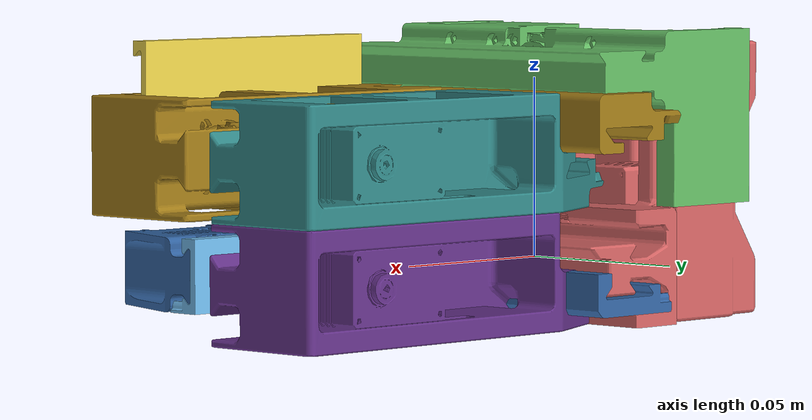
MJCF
<?xml version="1.0" encoding="UTF-8"?>
<mujoco model="cartesian_hand">
  <compiler angle="radian" meshdir="meshes" autolimits="true"/>
  <option timestep="0.0005" iterations="100" integrator="implicitfast"/>
  <visual>
    <headlight diffuse="0.6 0.6 0.6" ambient="0.35 0.35 0.35" specular="0.2 0.2 0.2"/>
    <global azimuth="-30" elevation="-20"/>
  </visual>
  <statistic center="0.05 0 0.03" extent="0.30" meansize="0.01"/>

  <asset>
    <mesh name="base_mesh" file="base.obj" scale="0.001 0.001 0.001"/>
    <mesh name="base_col_00_mesh" file="collision_pieces/base_00.obj" scale="0.001 0.001 0.001"/>
    <mesh name="base_col_01_mesh" file="collision_pieces/base_01.obj" scale="0.001 0.001 0.001"/>
    <mesh name="base_col_02_mesh" file="collision_pieces/base_02.obj" scale="0.001 0.001 0.001"/>
    <mesh name="base_col_03_mesh" file="collision_pieces/base_03.obj" scale="0.001 0.001 0.001"/>
    <mesh name="base_col_04_mesh" file="collision_pieces/base_04.obj" scale="0.001 0.001 0.001"/>
    <mesh name="base_col_05_mesh" file="collision_pieces/base_05.obj" scale="0.001 0.001 0.001"/>
    <mesh name="bridge_mesh" file="bridge.obj" scale="0.001 0.001 0.001"/>
    <mesh name="bridge_col_00_mesh" file="collision_pieces/bridge_00.obj" scale="0.001 0.001 0.001"/>
    <mesh name="bridge_col_01_mesh" file="collision_pieces/bridge_01.obj" scale="0.001 0.001 0.001"/>
    <mesh name="bridge_col_02_mesh" file="collision_pieces/bridge_02.obj" scale="0.001 0.001 0.001"/>
    <mesh name="bridge_col_03_mesh" file="collision_pieces/bridge_03.obj" scale="0.001 0.001 0.001"/>
    <mesh name="bridge_col_04_mesh" file="collision_pieces/bridge_04.obj" scale="0.001 0.001 0.001"/>
    <mesh name="bridge_col_05_mesh" file="collision_pieces/bridge_05.obj" scale="0.001 0.001 0.001"/>
    <mesh name="left_down_finger_mesh" file="left_down_finger.obj" scale="0.001 0.001 0.001"/>
    <mesh name="left_down_finger_col_00_mesh" file="collision_pieces/left_down_finger_00.obj" scale="0.001 0.001 0.001"/>
    <mesh name="left_down_finger_col_01_mesh" file="collision_pieces/left_down_finger_01.obj" scale="0.001 0.001 0.001"/>
    <mesh name="left_down_finger_col_02_mesh" file="collision_pieces/left_down_finger_02.obj" scale="0.001 0.001 0.001"/>
    <mesh name="left_down_finger_col_03_mesh" file="collision_pieces/left_down_finger_03.obj" scale="0.001 0.001 0.001"/>
    <mesh name="left_down_rack_mesh" file="left_down_rack.obj" scale="0.001 0.001 0.001"/>
    <mesh name="left_down_rack_col_00_mesh" file="collision_pieces/left_down_rack_00.obj" scale="0.001 0.001 0.001"/>
    <mesh name="left_down_rack_col_01_mesh" file="collision_pieces/left_down_rack_01.obj" scale="0.001 0.001 0.001"/>
    <mesh name="left_down_rack_col_02_mesh" file="collision_pieces/left_down_rack_02.obj" scale="0.001 0.001 0.001"/>
    <mesh name="left_down_rack_col_03_mesh" file="collision_pieces/left_down_rack_03.obj" scale="0.001 0.001 0.001"/>
    <mesh name="left_down_rack_col_04_mesh" file="collision_pieces/left_down_rack_04.obj" scale="0.001 0.001 0.001"/>
    <mesh name="left_down_rack_col_05_mesh" file="collision_pieces/left_down_rack_05.obj" scale="0.001 0.001 0.001"/>
    <mesh name="left_down_rack_col_06_mesh" file="collision_pieces/left_down_rack_06.obj" scale="0.001 0.001 0.001"/>
    <mesh name="left_down_rack_col_07_mesh" file="collision_pieces/left_down_rack_07.obj" scale="0.001 0.001 0.001"/>
    <mesh name="left_down_rack_col_08_mesh" file="collision_pieces/left_down_rack_08.obj" scale="0.001 0.001 0.001"/>
    <mesh name="left_down_rack_col_09_mesh" file="collision_pieces/left_down_rack_09.obj" scale="0.001 0.001 0.001"/>
    <mesh name="left_down_rack_col_10_mesh" file="collision_pieces/left_down_rack_10.obj" scale="0.001 0.001 0.001"/>
    <mesh name="left_down_rack_col_11_mesh" file="collision_pieces/left_down_rack_11.obj" scale="0.001 0.001 0.001"/>
    <mesh name="left_down_rack_col_12_mesh" file="collision_pieces/left_down_rack_12.obj" scale="0.001 0.001 0.001"/>
    <mesh name="left_down_rack_col_13_mesh" file="collision_pieces/left_down_rack_13.obj" scale="0.001 0.001 0.001"/>
    <mesh name="left_down_rack_col_14_mesh" file="collision_pieces/left_down_rack_14.obj" scale="0.001 0.001 0.001"/>
    <mesh name="left_down_rack_col_15_mesh" file="collision_pieces/left_down_rack_15.obj" scale="0.001 0.001 0.001"/>
    <mesh name="left_down_rack_col_16_mesh" file="collision_pieces/left_down_rack_16.obj" scale="0.001 0.001 0.001"/>
    <mesh name="left_down_rack_col_17_mesh" file="collision_pieces/left_down_rack_17.obj" scale="0.001 0.001 0.001"/>
    <mesh name="left_down_rack_col_18_mesh" file="collision_pieces/left_down_rack_18.obj" scale="0.001 0.001 0.001"/>
    <mesh name="left_down_rack_col_19_mesh" file="collision_pieces/left_down_rack_19.obj" scale="0.001 0.001 0.001"/>
    <mesh name="left_down_rack_col_20_mesh" file="collision_pieces/left_down_rack_20.obj" scale="0.001 0.001 0.001"/>
    <mesh name="left_down_rack_col_21_mesh" file="collision_pieces/left_down_rack_21.obj" scale="0.001 0.001 0.001"/>
    <mesh name="left_down_rack_col_22_mesh" file="collision_pieces/left_down_rack_22.obj" scale="0.001 0.001 0.001"/>
    <mesh name="left_down_rack_col_23_mesh" file="collision_pieces/left_down_rack_23.obj" scale="0.001 0.001 0.001"/>
    <mesh name="left_down_rack_col_24_mesh" file="collision_pieces/left_down_rack_24.obj" scale="0.001 0.001 0.001"/>
    <mesh name="left_down_rack_col_25_mesh" file="collision_pieces/left_down_rack_25.obj" scale="0.001 0.001 0.001"/>
    <mesh name="left_down_rack_col_26_mesh" file="collision_pieces/left_down_rack_26.obj" scale="0.001 0.001 0.001"/>
    <mesh name="left_down_rack_col_27_mesh" file="collision_pieces/left_down_rack_27.obj" scale="0.001 0.001 0.001"/>
    <mesh name="left_down_rack_col_28_mesh" file="collision_pieces/left_down_rack_28.obj" scale="0.001 0.001 0.001"/>
    <mesh name="left_down_rack_col_29_mesh" file="collision_pieces/left_down_rack_29.obj" scale="0.001 0.001 0.001"/>
    <mesh name="left_down_rack_col_30_mesh" file="collision_pieces/left_down_rack_30.obj" scale="0.001 0.001 0.001"/>
    <mesh name="left_down_rack_col_31_mesh" file="collision_pieces/left_down_rack_31.obj" scale="0.001 0.001 0.001"/>
    <mesh name="left_down_rack_col_32_mesh" file="collision_pieces/left_down_rack_32.obj" scale="0.001 0.001 0.001"/>
    <mesh name="left_down_rack_col_33_mesh" file="collision_pieces/left_down_rack_33.obj" scale="0.001 0.001 0.001"/>
    <mesh name="left_up_finger_mesh" file="left_up_finger.obj" scale="0.001 0.001 0.001"/>
    <mesh name="left_up_finger_col_00_mesh" file="collision_pieces/left_up_finger_00.obj" scale="0.001 0.001 0.001"/>
    <mesh name="left_up_finger_col_01_mesh" file="collision_pieces/left_up_finger_01.obj" scale="0.001 0.001 0.001"/>
    <mesh name="left_up_finger_col_02_mesh" file="collision_pieces/left_up_finger_02.obj" scale="0.001 0.001 0.001"/>
    <mesh name="left_up_finger_col_03_mesh" file="collision_pieces/left_up_finger_03.obj" scale="0.001 0.001 0.001"/>
    <mesh name="left_up_rack_mesh" file="left_up_rack.obj" scale="0.001 0.001 0.001"/>
    <mesh name="left_up_rack_col_00_mesh" file="collision_pieces/left_up_rack_00.obj" scale="0.001 0.001 0.001"/>
    <mesh name="left_up_rack_col_01_mesh" file="collision_pieces/left_up_rack_01.obj" scale="0.001 0.001 0.001"/>
    <mesh name="left_up_rack_col_02_mesh" file="collision_pieces/left_up_rack_02.obj" scale="0.001 0.001 0.001"/>
    <mesh name="left_up_rack_col_03_mesh" file="collision_pieces/left_up_rack_03.obj" scale="0.001 0.001 0.001"/>
    <mesh name="left_up_rack_col_04_mesh" file="collision_pieces/left_up_rack_04.obj" scale="0.001 0.001 0.001"/>
    <mesh name="left_up_rack_col_05_mesh" file="collision_pieces/left_up_rack_05.obj" scale="0.001 0.001 0.001"/>
    <mesh name="left_up_rack_col_06_mesh" file="collision_pieces/left_up_rack_06.obj" scale="0.001 0.001 0.001"/>
    <mesh name="left_up_rack_col_07_mesh" file="collision_pieces/left_up_rack_07.obj" scale="0.001 0.001 0.001"/>
    <mesh name="left_up_rack_col_08_mesh" file="collision_pieces/left_up_rack_08.obj" scale="0.001 0.001 0.001"/>
    <mesh name="left_up_rack_col_09_mesh" file="collision_pieces/left_up_rack_09.obj" scale="0.001 0.001 0.001"/>
    <mesh name="left_up_rack_col_10_mesh" file="collision_pieces/left_up_rack_10.obj" scale="0.001 0.001 0.001"/>
    <mesh name="left_up_rack_col_11_mesh" file="collision_pieces/left_up_rack_11.obj" scale="0.001 0.001 0.001"/>
    <mesh name="left_up_rack_col_12_mesh" file="collision_pieces/left_up_rack_12.obj" scale="0.001 0.001 0.001"/>
    <mesh name="left_up_rack_col_13_mesh" file="collision_pieces/left_up_rack_13.obj" scale="0.001 0.001 0.001"/>
    <mesh name="left_up_rack_col_14_mesh" file="collision_pieces/left_up_rack_14.obj" scale="0.001 0.001 0.001"/>
    <mesh name="left_up_rack_col_15_mesh" file="collision_pieces/left_up_rack_15.obj" scale="0.001 0.001 0.001"/>
    <mesh name="left_up_rack_col_16_mesh" file="collision_pieces/left_up_rack_16.obj" scale="0.001 0.001 0.001"/>
    <mesh name="left_up_rack_col_17_mesh" file="collision_pieces/left_up_rack_17.obj" scale="0.001 0.001 0.001"/>
    <mesh name="left_up_rack_col_18_mesh" file="collision_pieces/left_up_rack_18.obj" scale="0.001 0.001 0.001"/>
    <mesh name="left_up_rack_col_19_mesh" file="collision_pieces/left_up_rack_19.obj" scale="0.001 0.001 0.001"/>
    <mesh name="left_up_rack_col_20_mesh" file="collision_pieces/left_up_rack_20.obj" scale="0.001 0.001 0.001"/>
    <mesh name="left_up_rack_col_21_mesh" file="collision_pieces/left_up_rack_21.obj" scale="0.001 0.001 0.001"/>
    <mesh name="left_up_rack_col_22_mesh" file="collision_pieces/left_up_rack_22.obj" scale="0.001 0.001 0.001"/>
    <mesh name="left_up_rack_col_23_mesh" file="collision_pieces/left_up_rack_23.obj" scale="0.001 0.001 0.001"/>
    <mesh name="left_up_rack_col_24_mesh" file="collision_pieces/left_up_rack_24.obj" scale="0.001 0.001 0.001"/>
    <mesh name="left_up_rack_col_25_mesh" file="collision_pieces/left_up_rack_25.obj" scale="0.001 0.001 0.001"/>
    <mesh name="left_up_rack_col_26_mesh" file="collision_pieces/left_up_rack_26.obj" scale="0.001 0.001 0.001"/>
    <mesh name="left_up_rack_col_27_mesh" file="collision_pieces/left_up_rack_27.obj" scale="0.001 0.001 0.001"/>
    <mesh name="left_up_rack_col_28_mesh" file="collision_pieces/left_up_rack_28.obj" scale="0.001 0.001 0.001"/>
    <mesh name="left_up_rack_col_29_mesh" file="collision_pieces/left_up_rack_29.obj" scale="0.001 0.001 0.001"/>
    <mesh name="left_up_rack_col_30_mesh" file="collision_pieces/left_up_rack_30.obj" scale="0.001 0.001 0.001"/>
    <mesh name="right_down_finger_mesh" file="right_down_finger.obj" scale="0.001 0.001 0.001"/>
    <mesh name="right_down_finger_col_00_mesh" file="collision_pieces/right_down_finger_00.obj" scale="0.001 0.001 0.001"/>
    <mesh name="right_down_finger_col_01_mesh" file="collision_pieces/right_down_finger_01.obj" scale="0.001 0.001 0.001"/>
    <mesh name="right_down_finger_col_02_mesh" file="collision_pieces/right_down_finger_02.obj" scale="0.001 0.001 0.001"/>
    <mesh name="right_down_finger_col_03_mesh" file="collision_pieces/right_down_finger_03.obj" scale="0.001 0.001 0.001"/>
    <mesh name="right_down_rack_mesh" file="right_down_rack.obj" scale="0.001 0.001 0.001"/>
    <mesh name="right_down_rack_col_00_mesh" file="collision_pieces/right_down_rack_00.obj" scale="0.001 0.001 0.001"/>
    <mesh name="right_down_rack_col_01_mesh" file="collision_pieces/right_down_rack_01.obj" scale="0.001 0.001 0.001"/>
    <mesh name="right_down_rack_col_02_mesh" file="collision_pieces/right_down_rack_02.obj" scale="0.001 0.001 0.001"/>
    <mesh name="right_down_rack_col_03_mesh" file="collision_pieces/right_down_rack_03.obj" scale="0.001 0.001 0.001"/>
    <mesh name="right_down_rack_col_04_mesh" file="collision_pieces/right_down_rack_04.obj" scale="0.001 0.001 0.001"/>
    <mesh name="right_down_rack_col_05_mesh" file="collision_pieces/right_down_rack_05.obj" scale="0.001 0.001 0.001"/>
    <mesh name="right_down_rack_col_06_mesh" file="collision_pieces/right_down_rack_06.obj" scale="0.001 0.001 0.001"/>
    <mesh name="right_down_rack_col_07_mesh" file="collision_pieces/right_down_rack_07.obj" scale="0.001 0.001 0.001"/>
    <mesh name="right_down_rack_col_08_mesh" file="collision_pieces/right_down_rack_08.obj" scale="0.001 0.001 0.001"/>
    <mesh name="right_down_rack_col_09_mesh" file="collision_pieces/right_down_rack_09.obj" scale="0.001 0.001 0.001"/>
    <mesh name="right_down_rack_col_10_mesh" file="collision_pieces/right_down_rack_10.obj" scale="0.001 0.001 0.001"/>
    <mesh name="right_down_rack_col_11_mesh" file="collision_pieces/right_down_rack_11.obj" scale="0.001 0.001 0.001"/>
    <mesh name="right_down_rack_col_12_mesh" file="collision_pieces/right_down_rack_12.obj" scale="0.001 0.001 0.001"/>
    <mesh name="right_down_rack_col_13_mesh" file="collision_pieces/right_down_rack_13.obj" scale="0.001 0.001 0.001"/>
    <mesh name="right_down_rack_col_14_mesh" file="collision_pieces/right_down_rack_14.obj" scale="0.001 0.001 0.001"/>
    <mesh name="right_down_rack_col_15_mesh" file="collision_pieces/right_down_rack_15.obj" scale="0.001 0.001 0.001"/>
    <mesh name="right_down_rack_col_16_mesh" file="collision_pieces/right_down_rack_16.obj" scale="0.001 0.001 0.001"/>
    <mesh name="right_down_rack_col_17_mesh" file="collision_pieces/right_down_rack_17.obj" scale="0.001 0.001 0.001"/>
    <mesh name="right_down_rack_col_18_mesh" file="collision_pieces/right_down_rack_18.obj" scale="0.001 0.001 0.001"/>
    <mesh name="right_down_rack_col_19_mesh" file="collision_pieces/right_down_rack_19.obj" scale="0.001 0.001 0.001"/>
    <mesh name="right_down_rack_col_20_mesh" file="collision_pieces/right_down_rack_20.obj" scale="0.001 0.001 0.001"/>
    <mesh name="right_down_rack_col_21_mesh" file="collision_pieces/right_down_rack_21.obj" scale="0.001 0.001 0.001"/>
    <mesh name="right_down_rack_col_22_mesh" file="collision_pieces/right_down_rack_22.obj" scale="0.001 0.001 0.001"/>
    <mesh name="right_down_rack_col_23_mesh" file="collision_pieces/right_down_rack_23.obj" scale="0.001 0.001 0.001"/>
    <mesh name="right_down_rack_col_24_mesh" file="collision_pieces/right_down_rack_24.obj" scale="0.001 0.001 0.001"/>
    <mesh name="right_down_rack_col_25_mesh" file="collision_pieces/right_down_rack_25.obj" scale="0.001 0.001 0.001"/>
    <mesh name="right_down_rack_col_26_mesh" file="collision_pieces/right_down_rack_26.obj" scale="0.001 0.001 0.001"/>
    <mesh name="right_down_rack_col_27_mesh" file="collision_pieces/right_down_rack_27.obj" scale="0.001 0.001 0.001"/>
    <mesh name="right_down_rack_col_28_mesh" file="collision_pieces/right_down_rack_28.obj" scale="0.001 0.001 0.001"/>
    <mesh name="right_down_rack_col_29_mesh" file="collision_pieces/right_down_rack_29.obj" scale="0.001 0.001 0.001"/>
    <mesh name="right_down_rack_col_30_mesh" file="collision_pieces/right_down_rack_30.obj" scale="0.001 0.001 0.001"/>
    <mesh name="right_down_rack_col_31_mesh" file="collision_pieces/right_down_rack_31.obj" scale="0.001 0.001 0.001"/>
    <mesh name="right_up_finger_mesh" file="right_up_finger.obj" scale="0.001 0.001 0.001"/>
    <mesh name="right_up_finger_col_00_mesh" file="collision_pieces/right_up_finger_00.obj" scale="0.001 0.001 0.001"/>
    <mesh name="right_up_finger_col_01_mesh" file="collision_pieces/right_up_finger_01.obj" scale="0.001 0.001 0.001"/>
    <mesh name="right_up_finger_col_02_mesh" file="collision_pieces/right_up_finger_02.obj" scale="0.001 0.001 0.001"/>
    <mesh name="right_up_finger_col_03_mesh" file="collision_pieces/right_up_finger_03.obj" scale="0.001 0.001 0.001"/>
    <mesh name="right_up_rack_mesh" file="right_up_rack.obj" scale="0.001 0.001 0.001"/>
    <mesh name="right_up_rack_col_00_mesh" file="collision_pieces/right_up_rack_00.obj" scale="0.001 0.001 0.001"/>
    <mesh name="right_up_rack_col_01_mesh" file="collision_pieces/right_up_rack_01.obj" scale="0.001 0.001 0.001"/>
    <mesh name="right_up_rack_col_02_mesh" file="collision_pieces/right_up_rack_02.obj" scale="0.001 0.001 0.001"/>
    <mesh name="right_up_rack_col_03_mesh" file="collision_pieces/right_up_rack_03.obj" scale="0.001 0.001 0.001"/>
    <mesh name="right_up_rack_col_04_mesh" file="collision_pieces/right_up_rack_04.obj" scale="0.001 0.001 0.001"/>
    <mesh name="right_up_rack_col_05_mesh" file="collision_pieces/right_up_rack_05.obj" scale="0.001 0.001 0.001"/>
    <mesh name="right_up_rack_col_06_mesh" file="collision_pieces/right_up_rack_06.obj" scale="0.001 0.001 0.001"/>
    <mesh name="right_up_rack_col_07_mesh" file="collision_pieces/right_up_rack_07.obj" scale="0.001 0.001 0.001"/>
    <mesh name="right_up_rack_col_08_mesh" file="collision_pieces/right_up_rack_08.obj" scale="0.001 0.001 0.001"/>
    <mesh name="right_up_rack_col_09_mesh" file="collision_pieces/right_up_rack_09.obj" scale="0.001 0.001 0.001"/>
    <mesh name="right_up_rack_col_10_mesh" file="collision_pieces/right_up_rack_10.obj" scale="0.001 0.001 0.001"/>
    <mesh name="right_up_rack_col_11_mesh" file="collision_pieces/right_up_rack_11.obj" scale="0.001 0.001 0.001"/>
    <mesh name="right_up_rack_col_12_mesh" file="collision_pieces/right_up_rack_12.obj" scale="0.001 0.001 0.001"/>
    <mesh name="right_up_rack_col_13_mesh" file="collision_pieces/right_up_rack_13.obj" scale="0.001 0.001 0.001"/>
    <mesh name="right_up_rack_col_14_mesh" file="collision_pieces/right_up_rack_14.obj" scale="0.001 0.001 0.001"/>
    <mesh name="right_up_rack_col_15_mesh" file="collision_pieces/right_up_rack_15.obj" scale="0.001 0.001 0.001"/>
    <mesh name="right_up_rack_col_16_mesh" file="collision_pieces/right_up_rack_16.obj" scale="0.001 0.001 0.001"/>
    <mesh name="right_up_rack_col_17_mesh" file="collision_pieces/right_up_rack_17.obj" scale="0.001 0.001 0.001"/>
    <mesh name="right_up_rack_col_18_mesh" file="collision_pieces/right_up_rack_18.obj" scale="0.001 0.001 0.001"/>
    <mesh name="right_up_rack_col_19_mesh" file="collision_pieces/right_up_rack_19.obj" scale="0.001 0.001 0.001"/>
    <mesh name="right_up_rack_col_20_mesh" file="collision_pieces/right_up_rack_20.obj" scale="0.001 0.001 0.001"/>
    <mesh name="right_up_rack_col_21_mesh" file="collision_pieces/right_up_rack_21.obj" scale="0.001 0.001 0.001"/>
    <mesh name="right_up_rack_col_22_mesh" file="collision_pieces/right_up_rack_22.obj" scale="0.001 0.001 0.001"/>
    <mesh name="right_up_rack_col_23_mesh" file="collision_pieces/right_up_rack_23.obj" scale="0.001 0.001 0.001"/>
    <mesh name="right_up_rack_col_24_mesh" file="collision_pieces/right_up_rack_24.obj" scale="0.001 0.001 0.001"/>
    <mesh name="right_up_rack_col_25_mesh" file="collision_pieces/right_up_rack_25.obj" scale="0.001 0.001 0.001"/>
    <mesh name="right_up_rack_col_26_mesh" file="collision_pieces/right_up_rack_26.obj" scale="0.001 0.001 0.001"/>
    <mesh name="right_up_rack_col_27_mesh" file="collision_pieces/right_up_rack_27.obj" scale="0.001 0.001 0.001"/>
    <mesh name="right_up_rack_col_28_mesh" file="collision_pieces/right_up_rack_28.obj" scale="0.001 0.001 0.001"/>
    <material name="base_mat" rgba="0.85 0.40 0.40 1"/>
    <material name="bridge_mat" rgba="0.40 0.75 0.40 1"/>
    <material name="left_down_rack_mat" rgba="0.20 0.40 0.65 1"/>
    <material name="left_down_finger_mat" rgba="0.45 0.75 0.95 1"/>
    <material name="right_down_rack_mat" rgba="0.40 0.20 0.55 1"/>
    <material name="right_down_finger_mat" rgba="0.80 0.50 0.95 1"/>
    <material name="left_up_rack_mat" rgba="0.65 0.50 0.10 1"/>
    <material name="left_up_finger_mat" rgba="0.95 0.85 0.30 1"/>
    <material name="right_up_rack_mat" rgba="0.20 0.55 0.55 1"/>
    <material name="right_up_finger_mat" rgba="0.50 0.90 0.90 1"/>
    <texture name="grid_tex" type="2d" builtin="checker"
             rgb1="0.20 0.30 0.40" rgb2="0.10 0.15 0.20"
             width="512" height="512"/>
    <material name="grid" texture="grid_tex"
              texrepeat="2 2" texuniform="true" reflectance="0.2"/>
  </asset>

  <worldbody>
    <geom name="floor" type="plane" size="0 0 0.05"
          material="grid" pos="0 0 -0.10"/>
    <light name="overhead" pos="0 0 0.6" dir="0 0 -1"
           directional="true" diffuse="0.85 0.85 0.85"/>
    <light name="fill" pos="0.4 -0.4 0.4" dir="-1 1 -1"
           directional="true" diffuse="0.45 0.45 0.45"/>

    <body name="base" pos="0 0 0">
      <inertial mass="0.0695138"
                pos="-0.0235692 0.00865956 0.0152749"
                diaginertia="4.23609e-05 0.000136314 0.000158393"
                quat="0.922085 0.143966 0.32869 -0.144899"/>
      <geom name="base_visual" type="mesh" mesh="base_mesh"
            material="base_mat" contype="0" conaffinity="0" group="2"/>
      <geom name="base_col_00" type="mesh" mesh="base_col_00_mesh" contype="1" conaffinity="0" group="3" friction="0.5 0.005 0.0001" condim="3" solref="0.005 1"/>
      <geom name="base_col_01" type="mesh" mesh="base_col_01_mesh" contype="1" conaffinity="0" group="3" friction="0.5 0.005 0.0001" condim="3" solref="0.005 1"/>
      <geom name="base_col_02" type="mesh" mesh="base_col_02_mesh" contype="1" conaffinity="0" group="3" friction="0.5 0.005 0.0001" condim="3" solref="0.005 1"/>
      <geom name="base_col_03" type="mesh" mesh="base_col_03_mesh" contype="1" conaffinity="0" group="3" friction="0.5 0.005 0.0001" condim="3" solref="0.005 1"/>
      <geom name="base_col_04" type="mesh" mesh="base_col_04_mesh" contype="1" conaffinity="0" group="3" friction="0.5 0.005 0.0001" condim="3" solref="0.005 1"/>
      <geom name="base_col_05" type="mesh" mesh="base_col_05_mesh" contype="1" conaffinity="0" group="3" friction="0.5 0.005 0.0001" condim="3" solref="0.005 1"/>
      <body name="bridge" pos="0 0 0">
        <inertial mass="0.0811808"
                  pos="-0.0152106 -0.00949439 0.0469537"
                  diaginertia="5.6951e-05 0.000223313 0.000256792"
                  quat="0.589177 -0.0362555 -0.781758 -0.201024"/>
        <joint name="bridge_z" type="slide" axis="0 0 1" range="-0.027 0.03" damping="40" armature="0.05"/>
        <geom name="bridge_visual" type="mesh" mesh="bridge_mesh"
              material="bridge_mat" contype="0" conaffinity="0" group="2"/>
      <geom name="bridge_col_00" type="mesh" mesh="bridge_col_00_mesh" contype="1" conaffinity="0" group="3" friction="0.5 0.005 0.0001" condim="3" solref="0.005 1"/>
      <geom name="bridge_col_01" type="mesh" mesh="bridge_col_01_mesh" contype="1" conaffinity="0" group="3" friction="0.5 0.005 0.0001" condim="3" solref="0.005 1"/>
      <geom name="bridge_col_02" type="mesh" mesh="bridge_col_02_mesh" contype="1" conaffinity="0" group="3" friction="0.5 0.005 0.0001" condim="3" solref="0.005 1"/>
      <geom name="bridge_col_03" type="mesh" mesh="bridge_col_03_mesh" contype="1" conaffinity="0" group="3" friction="0.5 0.005 0.0001" condim="3" solref="0.005 1"/>
      <geom name="bridge_col_04" type="mesh" mesh="bridge_col_04_mesh" contype="1" conaffinity="0" group="3" friction="0.5 0.005 0.0001" condim="3" solref="0.005 1"/>
      <geom name="bridge_col_05" type="mesh" mesh="bridge_col_05_mesh" contype="1" conaffinity="0" group="3" friction="0.5 0.005 0.0001" condim="3" solref="0.005 1"/>
        <body name="left_up_rack" pos="0 0 0">
          <inertial mass="0.036995"
                    pos="0.087428 -0.0550683 0.0520866"
                    diaginertia="6.96676e-06 0.000501376 0.000503989"
                    quat="0.93538 -0.0570725 -0.223156 -0.268344"/>
          <joint name="left_up_y" type="slide" axis="0 1 0" range="-0.02 0.035" damping="12" armature="0.02"/>
          <geom name="left_up_rack_visual" type="mesh" mesh="left_up_rack_mesh"
                material="left_up_rack_mat" contype="0" conaffinity="0" group="2"/>
          <geom name="left_up_rack_col_00" type="mesh" mesh="left_up_rack_col_00_mesh" contype="1" conaffinity="0" group="3" friction="0.5 0.005 0.0001" condim="3" solref="0.005 1"/>
          <geom name="left_up_rack_col_01" type="mesh" mesh="left_up_rack_col_01_mesh" contype="1" conaffinity="0" group="3" friction="0.5 0.005 0.0001" condim="3" solref="0.005 1"/>
          <geom name="left_up_rack_col_02" type="mesh" mesh="left_up_rack_col_02_mesh" contype="1" conaffinity="0" group="3" friction="0.5 0.005 0.0001" condim="3" solref="0.005 1"/>
          <geom name="left_up_rack_col_03" type="mesh" mesh="left_up_rack_col_03_mesh" contype="1" conaffinity="0" group="3" friction="0.5 0.005 0.0001" condim="3" solref="0.005 1"/>
          <geom name="left_up_rack_col_04" type="mesh" mesh="left_up_rack_col_04_mesh" contype="1" conaffinity="0" group="3" friction="0.5 0.005 0.0001" condim="3" solref="0.005 1"/>
          <geom name="left_up_rack_col_05" type="mesh" mesh="left_up_rack_col_05_mesh" contype="1" conaffinity="0" group="3" friction="0.5 0.005 0.0001" condim="3" solref="0.005 1"/>
          <geom name="left_up_rack_col_06" type="mesh" mesh="left_up_rack_col_06_mesh" contype="1" conaffinity="0" group="3" friction="0.5 0.005 0.0001" condim="3" solref="0.005 1"/>
          <geom name="left_up_rack_col_07" type="mesh" mesh="left_up_rack_col_07_mesh" contype="1" conaffinity="0" group="3" friction="0.5 0.005 0.0001" condim="3" solref="0.005 1"/>
          <geom name="left_up_rack_col_08" type="mesh" mesh="left_up_rack_col_08_mesh" contype="1" conaffinity="0" group="3" friction="0.5 0.005 0.0001" condim="3" solref="0.005 1"/>
          <geom name="left_up_rack_col_09" type="mesh" mesh="left_up_rack_col_09_mesh" contype="1" conaffinity="0" group="3" friction="0.5 0.005 0.0001" condim="3" solref="0.005 1"/>
          <geom name="left_up_rack_col_10" type="mesh" mesh="left_up_rack_col_10_mesh" contype="1" conaffinity="0" group="3" friction="0.5 0.005 0.0001" condim="3" solref="0.005 1"/>
          <geom name="left_up_rack_col_11" type="mesh" mesh="left_up_rack_col_11_mesh" contype="1" conaffinity="0" group="3" friction="0.5 0.005 0.0001" condim="3" solref="0.005 1"/>
          <geom name="left_up_rack_col_12" type="mesh" mesh="left_up_rack_col_12_mesh" contype="1" conaffinity="0" group="3" friction="0.5 0.005 0.0001" condim="3" solref="0.005 1"/>
          <geom name="left_up_rack_col_13" type="mesh" mesh="left_up_rack_col_13_mesh" contype="1" conaffinity="0" group="3" friction="0.5 0.005 0.0001" condim="3" solref="0.005 1"/>
          <geom name="left_up_rack_col_14" type="mesh" mesh="left_up_rack_col_14_mesh" contype="1" conaffinity="0" group="3" friction="0.5 0.005 0.0001" condim="3" solref="0.005 1"/>
          <geom name="left_up_rack_col_15" type="mesh" mesh="left_up_rack_col_15_mesh" contype="1" conaffinity="0" group="3" friction="0.5 0.005 0.0001" condim="3" solref="0.005 1"/>
          <geom name="left_up_rack_col_16" type="mesh" mesh="left_up_rack_col_16_mesh" contype="1" conaffinity="0" group="3" friction="0.5 0.005 0.0001" condim="3" solref="0.005 1"/>
          <geom name="left_up_rack_col_17" type="mesh" mesh="left_up_rack_col_17_mesh" contype="1" conaffinity="0" group="3" friction="0.5 0.005 0.0001" condim="3" solref="0.005 1"/>
          <geom name="left_up_rack_col_18" type="mesh" mesh="left_up_rack_col_18_mesh" contype="1" conaffinity="0" group="3" friction="0.5 0.005 0.0001" condim="3" solref="0.005 1"/>
          <geom name="left_up_rack_col_19" type="mesh" mesh="left_up_rack_col_19_mesh" contype="1" conaffinity="0" group="3" friction="0.5 0.005 0.0001" condim="3" solref="0.005 1"/>
          <geom name="left_up_rack_col_20" type="mesh" mesh="left_up_rack_col_20_mesh" contype="1" conaffinity="0" group="3" friction="0.5 0.005 0.0001" condim="3" solref="0.005 1"/>
          <geom name="left_up_rack_col_21" type="mesh" mesh="left_up_rack_col_21_mesh" contype="1" conaffinity="0" group="3" friction="0.5 0.005 0.0001" condim="3" solref="0.005 1"/>
          <geom name="left_up_rack_col_22" type="mesh" mesh="left_up_rack_col_22_mesh" contype="1" conaffinity="0" group="3" friction="0.5 0.005 0.0001" condim="3" solref="0.005 1"/>
          <geom name="left_up_rack_col_23" type="mesh" mesh="left_up_rack_col_23_mesh" contype="1" conaffinity="0" group="3" friction="0.5 0.005 0.0001" condim="3" solref="0.005 1"/>
          <geom name="left_up_rack_col_24" type="mesh" mesh="left_up_rack_col_24_mesh" contype="1" conaffinity="0" group="3" friction="0.5 0.005 0.0001" condim="3" solref="0.005 1"/>
          <geom name="left_up_rack_col_25" type="mesh" mesh="left_up_rack_col_25_mesh" contype="1" conaffinity="0" group="3" friction="0.5 0.005 0.0001" condim="3" solref="0.005 1"/>
          <geom name="left_up_rack_col_26" type="mesh" mesh="left_up_rack_col_26_mesh" contype="1" conaffinity="0" group="3" friction="0.5 0.005 0.0001" condim="3" solref="0.005 1"/>
          <geom name="left_up_rack_col_27" type="mesh" mesh="left_up_rack_col_27_mesh" contype="1" conaffinity="0" group="3" friction="0.5 0.005 0.0001" condim="3" solref="0.005 1"/>
          <geom name="left_up_rack_col_28" type="mesh" mesh="left_up_rack_col_28_mesh" contype="1" conaffinity="0" group="3" friction="0.5 0.005 0.0001" condim="3" solref="0.005 1"/>
          <geom name="left_up_rack_col_29" type="mesh" mesh="left_up_rack_col_29_mesh" contype="1" conaffinity="0" group="3" friction="0.5 0.005 0.0001" condim="3" solref="0.005 1"/>
          <geom name="left_up_rack_col_30" type="mesh" mesh="left_up_rack_col_30_mesh" contype="1" conaffinity="0" group="3" friction="0.5 0.005 0.0001" condim="3" solref="0.005 1"/>
          <body name="left_up_finger" pos="0 0 0">
            <inertial mass="0.00323154"
                      pos="0.0725586 -0.0390056 0.0509872"
                      diaginertia="9.0173e-07 3.14832e-05 3.22223e-05"
                      quat="0.826112 -0.448378 -0.140057 -0.311256"/>
            <joint name="left_up_finger_x" type="slide" axis="1 0 0" range="0 0.055" damping="2.5" armature="0.01"/>
            <geom name="left_up_finger_visual" type="mesh" mesh="left_up_finger_mesh"
                  material="left_up_finger_mat" contype="0" conaffinity="0" group="2"/>
            <geom name="left_up_finger_col_00" type="mesh" mesh="left_up_finger_col_00_mesh" contype="1" conaffinity="0" group="3" friction="0.5 0.005 0.0001" condim="3" solref="0.005 1"/>
            <geom name="left_up_finger_col_01" type="mesh" mesh="left_up_finger_col_01_mesh" contype="1" conaffinity="0" group="3" friction="0.5 0.005 0.0001" condim="3" solref="0.005 1"/>
            <geom name="left_up_finger_col_02" type="mesh" mesh="left_up_finger_col_02_mesh" contype="1" conaffinity="0" group="3" friction="0.5 0.005 0.0001" condim="3" solref="0.005 1"/>
            <geom name="left_up_finger_col_03" type="mesh" mesh="left_up_finger_col_03_mesh" contype="1" conaffinity="0" group="3" friction="0.5 0.005 0.0001" condim="3" solref="0.005 1"/>
          </body>
        </body>
        <body name="right_up_rack" pos="0 0 0">
          <inertial mass="0.036995"
                    pos="0.087428 0.0550683 0.052101"
                    diaginertia="6.96911e-06 0.000501432 0.000504041"
                    quat="0.935102 0.061235 -0.222013 0.26934"/>
          <joint name="right_up_y" type="slide" axis="0 -1 0" range="-0.02 0.035" damping="12" armature="0.02"/>
          <geom name="right_up_rack_visual" type="mesh" mesh="right_up_rack_mesh"
                material="right_up_rack_mat" contype="0" conaffinity="0" group="2"/>
          <geom name="right_up_rack_col_00" type="mesh" mesh="right_up_rack_col_00_mesh" contype="1" conaffinity="0" group="3" friction="0.5 0.005 0.0001" condim="3" solref="0.005 1"/>
          <geom name="right_up_rack_col_01" type="mesh" mesh="right_up_rack_col_01_mesh" contype="1" conaffinity="0" group="3" friction="0.5 0.005 0.0001" condim="3" solref="0.005 1"/>
          <geom name="right_up_rack_col_02" type="mesh" mesh="right_up_rack_col_02_mesh" contype="1" conaffinity="0" group="3" friction="0.5 0.005 0.0001" condim="3" solref="0.005 1"/>
          <geom name="right_up_rack_col_03" type="mesh" mesh="right_up_rack_col_03_mesh" contype="1" conaffinity="0" group="3" friction="0.5 0.005 0.0001" condim="3" solref="0.005 1"/>
          <geom name="right_up_rack_col_04" type="mesh" mesh="right_up_rack_col_04_mesh" contype="1" conaffinity="0" group="3" friction="0.5 0.005 0.0001" condim="3" solref="0.005 1"/>
          <geom name="right_up_rack_col_05" type="mesh" mesh="right_up_rack_col_05_mesh" contype="1" conaffinity="0" group="3" friction="0.5 0.005 0.0001" condim="3" solref="0.005 1"/>
          <geom name="right_up_rack_col_06" type="mesh" mesh="right_up_rack_col_06_mesh" contype="1" conaffinity="0" group="3" friction="0.5 0.005 0.0001" condim="3" solref="0.005 1"/>
          <geom name="right_up_rack_col_07" type="mesh" mesh="right_up_rack_col_07_mesh" contype="1" conaffinity="0" group="3" friction="0.5 0.005 0.0001" condim="3" solref="0.005 1"/>
          <geom name="right_up_rack_col_08" type="mesh" mesh="right_up_rack_col_08_mesh" contype="1" conaffinity="0" group="3" friction="0.5 0.005 0.0001" condim="3" solref="0.005 1"/>
          <geom name="right_up_rack_col_09" type="mesh" mesh="right_up_rack_col_09_mesh" contype="1" conaffinity="0" group="3" friction="0.5 0.005 0.0001" condim="3" solref="0.005 1"/>
          <geom name="right_up_rack_col_10" type="mesh" mesh="right_up_rack_col_10_mesh" contype="1" conaffinity="0" group="3" friction="0.5 0.005 0.0001" condim="3" solref="0.005 1"/>
          <geom name="right_up_rack_col_11" type="mesh" mesh="right_up_rack_col_11_mesh" contype="1" conaffinity="0" group="3" friction="0.5 0.005 0.0001" condim="3" solref="0.005 1"/>
          <geom name="right_up_rack_col_12" type="mesh" mesh="right_up_rack_col_12_mesh" contype="1" conaffinity="0" group="3" friction="0.5 0.005 0.0001" condim="3" solref="0.005 1"/>
          <geom name="right_up_rack_col_13" type="mesh" mesh="right_up_rack_col_13_mesh" contype="1" conaffinity="0" group="3" friction="0.5 0.005 0.0001" condim="3" solref="0.005 1"/>
          <geom name="right_up_rack_col_14" type="mesh" mesh="right_up_rack_col_14_mesh" contype="1" conaffinity="0" group="3" friction="0.5 0.005 0.0001" condim="3" solref="0.005 1"/>
          <geom name="right_up_rack_col_15" type="mesh" mesh="right_up_rack_col_15_mesh" contype="1" conaffinity="0" group="3" friction="0.5 0.005 0.0001" condim="3" solref="0.005 1"/>
          <geom name="right_up_rack_col_16" type="mesh" mesh="right_up_rack_col_16_mesh" contype="1" conaffinity="0" group="3" friction="0.5 0.005 0.0001" condim="3" solref="0.005 1"/>
          <geom name="right_up_rack_col_17" type="mesh" mesh="right_up_rack_col_17_mesh" contype="1" conaffinity="0" group="3" friction="0.5 0.005 0.0001" condim="3" solref="0.005 1"/>
          <geom name="right_up_rack_col_18" type="mesh" mesh="right_up_rack_col_18_mesh" contype="1" conaffinity="0" group="3" friction="0.5 0.005 0.0001" condim="3" solref="0.005 1"/>
          <geom name="right_up_rack_col_19" type="mesh" mesh="right_up_rack_col_19_mesh" contype="1" conaffinity="0" group="3" friction="0.5 0.005 0.0001" condim="3" solref="0.005 1"/>
          <geom name="right_up_rack_col_20" type="mesh" mesh="right_up_rack_col_20_mesh" contype="1" conaffinity="0" group="3" friction="0.5 0.005 0.0001" condim="3" solref="0.005 1"/>
          <geom name="right_up_rack_col_21" type="mesh" mesh="right_up_rack_col_21_mesh" contype="1" conaffinity="0" group="3" friction="0.5 0.005 0.0001" condim="3" solref="0.005 1"/>
          <geom name="right_up_rack_col_22" type="mesh" mesh="right_up_rack_col_22_mesh" contype="1" conaffinity="0" group="3" friction="0.5 0.005 0.0001" condim="3" solref="0.005 1"/>
          <geom name="right_up_rack_col_23" type="mesh" mesh="right_up_rack_col_23_mesh" contype="1" conaffinity="0" group="3" friction="0.5 0.005 0.0001" condim="3" solref="0.005 1"/>
          <geom name="right_up_rack_col_24" type="mesh" mesh="right_up_rack_col_24_mesh" contype="1" conaffinity="0" group="3" friction="0.5 0.005 0.0001" condim="3" solref="0.005 1"/>
          <geom name="right_up_rack_col_25" type="mesh" mesh="right_up_rack_col_25_mesh" contype="1" conaffinity="0" group="3" friction="0.5 0.005 0.0001" condim="3" solref="0.005 1"/>
          <geom name="right_up_rack_col_26" type="mesh" mesh="right_up_rack_col_26_mesh" contype="1" conaffinity="0" group="3" friction="0.5 0.005 0.0001" condim="3" solref="0.005 1"/>
          <geom name="right_up_rack_col_27" type="mesh" mesh="right_up_rack_col_27_mesh" contype="1" conaffinity="0" group="3" friction="0.5 0.005 0.0001" condim="3" solref="0.005 1"/>
          <geom name="right_up_rack_col_28" type="mesh" mesh="right_up_rack_col_28_mesh" contype="1" conaffinity="0" group="3" friction="0.5 0.005 0.0001" condim="3" solref="0.005 1"/>
          <body name="right_up_finger" pos="0 0 0">
            <inertial mass="0.00323154"
                      pos="0.0725586 0.0390056 0.0532003"
                      diaginertia="9.10155e-07 3.21863e-05 3.30009e-05"
                      quat="0.823289 0.448293 -0.14877 0.314794"/>
            <joint name="right_up_finger_x" type="slide" axis="1 0 0" range="0 0.055" damping="2.5" armature="0.01"/>
            <geom name="right_up_finger_visual" type="mesh" mesh="right_up_finger_mesh"
                  material="right_up_finger_mat" contype="0" conaffinity="0" group="2"/>
            <geom name="right_up_finger_col_00" type="mesh" mesh="right_up_finger_col_00_mesh" contype="1" conaffinity="0" group="3" friction="0.5 0.005 0.0001" condim="3" solref="0.005 1"/>
            <geom name="right_up_finger_col_01" type="mesh" mesh="right_up_finger_col_01_mesh" contype="1" conaffinity="0" group="3" friction="0.5 0.005 0.0001" condim="3" solref="0.005 1"/>
            <geom name="right_up_finger_col_02" type="mesh" mesh="right_up_finger_col_02_mesh" contype="1" conaffinity="0" group="3" friction="0.5 0.005 0.0001" condim="3" solref="0.005 1"/>
            <geom name="right_up_finger_col_03" type="mesh" mesh="right_up_finger_col_03_mesh" contype="1" conaffinity="0" group="3" friction="0.5 0.005 0.0001" condim="3" solref="0.005 1"/>
          </body>
        </body>
      </body>
      <body name="left_down_rack" pos="0 0 0">
        <inertial mass="0.036995"
                  pos="0.087428 -0.0361588 -7.1681e-06"
                  diaginertia="6.40708e-06 0.000337181 0.000340371"
                  quat="0.980837 0.00193905 -0.000352174 -0.194821"/>
        <joint name="left_down_y" type="slide" axis="0 1 0" range="-0.04 0.017" damping="12" armature="0.02"/>
        <geom name="left_down_rack_visual" type="mesh" mesh="left_down_rack_mesh"
              material="left_down_rack_mat" contype="0" conaffinity="0" group="2"/>
        <geom name="left_down_rack_col_00" type="mesh" mesh="left_down_rack_col_00_mesh" contype="1" conaffinity="0" group="3" friction="0.5 0.005 0.0001" condim="3" solref="0.005 1"/>
        <geom name="left_down_rack_col_01" type="mesh" mesh="left_down_rack_col_01_mesh" contype="1" conaffinity="0" group="3" friction="0.5 0.005 0.0001" condim="3" solref="0.005 1"/>
        <geom name="left_down_rack_col_02" type="mesh" mesh="left_down_rack_col_02_mesh" contype="1" conaffinity="0" group="3" friction="0.5 0.005 0.0001" condim="3" solref="0.005 1"/>
        <geom name="left_down_rack_col_03" type="mesh" mesh="left_down_rack_col_03_mesh" contype="1" conaffinity="0" group="3" friction="0.5 0.005 0.0001" condim="3" solref="0.005 1"/>
        <geom name="left_down_rack_col_04" type="mesh" mesh="left_down_rack_col_04_mesh" contype="1" conaffinity="0" group="3" friction="0.5 0.005 0.0001" condim="3" solref="0.005 1"/>
        <geom name="left_down_rack_col_05" type="mesh" mesh="left_down_rack_col_05_mesh" contype="1" conaffinity="0" group="3" friction="0.5 0.005 0.0001" condim="3" solref="0.005 1"/>
        <geom name="left_down_rack_col_06" type="mesh" mesh="left_down_rack_col_06_mesh" contype="1" conaffinity="0" group="3" friction="0.5 0.005 0.0001" condim="3" solref="0.005 1"/>
        <geom name="left_down_rack_col_07" type="mesh" mesh="left_down_rack_col_07_mesh" contype="1" conaffinity="0" group="3" friction="0.5 0.005 0.0001" condim="3" solref="0.005 1"/>
        <geom name="left_down_rack_col_08" type="mesh" mesh="left_down_rack_col_08_mesh" contype="1" conaffinity="0" group="3" friction="0.5 0.005 0.0001" condim="3" solref="0.005 1"/>
        <geom name="left_down_rack_col_09" type="mesh" mesh="left_down_rack_col_09_mesh" contype="1" conaffinity="0" group="3" friction="0.5 0.005 0.0001" condim="3" solref="0.005 1"/>
        <geom name="left_down_rack_col_10" type="mesh" mesh="left_down_rack_col_10_mesh" contype="1" conaffinity="0" group="3" friction="0.5 0.005 0.0001" condim="3" solref="0.005 1"/>
        <geom name="left_down_rack_col_11" type="mesh" mesh="left_down_rack_col_11_mesh" contype="1" conaffinity="0" group="3" friction="0.5 0.005 0.0001" condim="3" solref="0.005 1"/>
        <geom name="left_down_rack_col_12" type="mesh" mesh="left_down_rack_col_12_mesh" contype="1" conaffinity="0" group="3" friction="0.5 0.005 0.0001" condim="3" solref="0.005 1"/>
        <geom name="left_down_rack_col_13" type="mesh" mesh="left_down_rack_col_13_mesh" contype="1" conaffinity="0" group="3" friction="0.5 0.005 0.0001" condim="3" solref="0.005 1"/>
        <geom name="left_down_rack_col_14" type="mesh" mesh="left_down_rack_col_14_mesh" contype="1" conaffinity="0" group="3" friction="0.5 0.005 0.0001" condim="3" solref="0.005 1"/>
        <geom name="left_down_rack_col_15" type="mesh" mesh="left_down_rack_col_15_mesh" contype="1" conaffinity="0" group="3" friction="0.5 0.005 0.0001" condim="3" solref="0.005 1"/>
        <geom name="left_down_rack_col_16" type="mesh" mesh="left_down_rack_col_16_mesh" contype="1" conaffinity="0" group="3" friction="0.5 0.005 0.0001" condim="3" solref="0.005 1"/>
        <geom name="left_down_rack_col_17" type="mesh" mesh="left_down_rack_col_17_mesh" contype="1" conaffinity="0" group="3" friction="0.5 0.005 0.0001" condim="3" solref="0.005 1"/>
        <geom name="left_down_rack_col_18" type="mesh" mesh="left_down_rack_col_18_mesh" contype="1" conaffinity="0" group="3" friction="0.5 0.005 0.0001" condim="3" solref="0.005 1"/>
        <geom name="left_down_rack_col_19" type="mesh" mesh="left_down_rack_col_19_mesh" contype="1" conaffinity="0" group="3" friction="0.5 0.005 0.0001" condim="3" solref="0.005 1"/>
        <geom name="left_down_rack_col_20" type="mesh" mesh="left_down_rack_col_20_mesh" contype="1" conaffinity="0" group="3" friction="0.5 0.005 0.0001" condim="3" solref="0.005 1"/>
        <geom name="left_down_rack_col_21" type="mesh" mesh="left_down_rack_col_21_mesh" contype="1" conaffinity="0" group="3" friction="0.5 0.005 0.0001" condim="3" solref="0.005 1"/>
        <geom name="left_down_rack_col_22" type="mesh" mesh="left_down_rack_col_22_mesh" contype="1" conaffinity="0" group="3" friction="0.5 0.005 0.0001" condim="3" solref="0.005 1"/>
        <geom name="left_down_rack_col_23" type="mesh" mesh="left_down_rack_col_23_mesh" contype="1" conaffinity="0" group="3" friction="0.5 0.005 0.0001" condim="3" solref="0.005 1"/>
        <geom name="left_down_rack_col_24" type="mesh" mesh="left_down_rack_col_24_mesh" contype="1" conaffinity="0" group="3" friction="0.5 0.005 0.0001" condim="3" solref="0.005 1"/>
        <geom name="left_down_rack_col_25" type="mesh" mesh="left_down_rack_col_25_mesh" contype="1" conaffinity="0" group="3" friction="0.5 0.005 0.0001" condim="3" solref="0.005 1"/>
        <geom name="left_down_rack_col_26" type="mesh" mesh="left_down_rack_col_26_mesh" contype="1" conaffinity="0" group="3" friction="0.5 0.005 0.0001" condim="3" solref="0.005 1"/>
        <geom name="left_down_rack_col_27" type="mesh" mesh="left_down_rack_col_27_mesh" contype="1" conaffinity="0" group="3" friction="0.5 0.005 0.0001" condim="3" solref="0.005 1"/>
        <geom name="left_down_rack_col_28" type="mesh" mesh="left_down_rack_col_28_mesh" contype="1" conaffinity="0" group="3" friction="0.5 0.005 0.0001" condim="3" solref="0.005 1"/>
        <geom name="left_down_rack_col_29" type="mesh" mesh="left_down_rack_col_29_mesh" contype="1" conaffinity="0" group="3" friction="0.5 0.005 0.0001" condim="3" solref="0.005 1"/>
        <geom name="left_down_rack_col_30" type="mesh" mesh="left_down_rack_col_30_mesh" contype="1" conaffinity="0" group="3" friction="0.5 0.005 0.0001" condim="3" solref="0.005 1"/>
        <geom name="left_down_rack_col_31" type="mesh" mesh="left_down_rack_col_31_mesh" contype="1" conaffinity="0" group="3" friction="0.5 0.005 0.0001" condim="3" solref="0.005 1"/>
        <geom name="left_down_rack_col_32" type="mesh" mesh="left_down_rack_col_32_mesh" contype="1" conaffinity="0" group="3" friction="0.5 0.005 0.0001" condim="3" solref="0.005 1"/>
        <geom name="left_down_rack_col_33" type="mesh" mesh="left_down_rack_col_33_mesh" contype="1" conaffinity="0" group="3" friction="0.5 0.005 0.0001" condim="3" solref="0.005 1"/>
        <body name="left_down_finger" pos="0 0 0">
          <inertial mass="0.00323154"
                    pos="0.0725586 -0.0200962 -0.00110656"
                    diaginertia="2.92597e-07 2.01226e-05 2.01748e-05"
                    quat="-0.498583 0.858007 -0.110055 0.0559259"/>
          <joint name="left_down_finger_x" type="slide" axis="1 0 0" range="0 0.055" damping="2.5" armature="0.01"/>
          <geom name="left_down_finger_visual" type="mesh" mesh="left_down_finger_mesh"
                material="left_down_finger_mat" contype="0" conaffinity="0" group="2"/>
          <geom name="left_down_finger_col_00" type="mesh" mesh="left_down_finger_col_00_mesh" contype="1" conaffinity="0" group="3" friction="0.5 0.005 0.0001" condim="3" solref="0.005 1"/>
          <geom name="left_down_finger_col_01" type="mesh" mesh="left_down_finger_col_01_mesh" contype="1" conaffinity="0" group="3" friction="0.5 0.005 0.0001" condim="3" solref="0.005 1"/>
          <geom name="left_down_finger_col_02" type="mesh" mesh="left_down_finger_col_02_mesh" contype="1" conaffinity="0" group="3" friction="0.5 0.005 0.0001" condim="3" solref="0.005 1"/>
          <geom name="left_down_finger_col_03" type="mesh" mesh="left_down_finger_col_03_mesh" contype="1" conaffinity="0" group="3" friction="0.5 0.005 0.0001" condim="3" solref="0.005 1"/>
        </body>
      </body>
      <body name="right_down_rack" pos="0 0 0">
        <inertial mass="0.036995"
                  pos="0.087428 0.0361588 7.1681e-06"
                  diaginertia="6.40708e-06 0.000337181 0.000340371"
                  quat="0.980837 0.00193905 0.000352174 0.194821"/>
        <joint name="right_down_y" type="slide" axis="0 -1 0" range="-0.04 0.017" damping="12" armature="0.02"/>
        <geom name="right_down_rack_visual" type="mesh" mesh="right_down_rack_mesh"
              material="right_down_rack_mat" contype="0" conaffinity="0" group="2"/>
        <geom name="right_down_rack_col_00" type="mesh" mesh="right_down_rack_col_00_mesh" contype="1" conaffinity="0" group="3" friction="0.5 0.005 0.0001" condim="3" solref="0.005 1"/>
        <geom name="right_down_rack_col_01" type="mesh" mesh="right_down_rack_col_01_mesh" contype="1" conaffinity="0" group="3" friction="0.5 0.005 0.0001" condim="3" solref="0.005 1"/>
        <geom name="right_down_rack_col_02" type="mesh" mesh="right_down_rack_col_02_mesh" contype="1" conaffinity="0" group="3" friction="0.5 0.005 0.0001" condim="3" solref="0.005 1"/>
        <geom name="right_down_rack_col_03" type="mesh" mesh="right_down_rack_col_03_mesh" contype="1" conaffinity="0" group="3" friction="0.5 0.005 0.0001" condim="3" solref="0.005 1"/>
        <geom name="right_down_rack_col_04" type="mesh" mesh="right_down_rack_col_04_mesh" contype="1" conaffinity="0" group="3" friction="0.5 0.005 0.0001" condim="3" solref="0.005 1"/>
        <geom name="right_down_rack_col_05" type="mesh" mesh="right_down_rack_col_05_mesh" contype="1" conaffinity="0" group="3" friction="0.5 0.005 0.0001" condim="3" solref="0.005 1"/>
        <geom name="right_down_rack_col_06" type="mesh" mesh="right_down_rack_col_06_mesh" contype="1" conaffinity="0" group="3" friction="0.5 0.005 0.0001" condim="3" solref="0.005 1"/>
        <geom name="right_down_rack_col_07" type="mesh" mesh="right_down_rack_col_07_mesh" contype="1" conaffinity="0" group="3" friction="0.5 0.005 0.0001" condim="3" solref="0.005 1"/>
        <geom name="right_down_rack_col_08" type="mesh" mesh="right_down_rack_col_08_mesh" contype="1" conaffinity="0" group="3" friction="0.5 0.005 0.0001" condim="3" solref="0.005 1"/>
        <geom name="right_down_rack_col_09" type="mesh" mesh="right_down_rack_col_09_mesh" contype="1" conaffinity="0" group="3" friction="0.5 0.005 0.0001" condim="3" solref="0.005 1"/>
        <geom name="right_down_rack_col_10" type="mesh" mesh="right_down_rack_col_10_mesh" contype="1" conaffinity="0" group="3" friction="0.5 0.005 0.0001" condim="3" solref="0.005 1"/>
        <geom name="right_down_rack_col_11" type="mesh" mesh="right_down_rack_col_11_mesh" contype="1" conaffinity="0" group="3" friction="0.5 0.005 0.0001" condim="3" solref="0.005 1"/>
        <geom name="right_down_rack_col_12" type="mesh" mesh="right_down_rack_col_12_mesh" contype="1" conaffinity="0" group="3" friction="0.5 0.005 0.0001" condim="3" solref="0.005 1"/>
        <geom name="right_down_rack_col_13" type="mesh" mesh="right_down_rack_col_13_mesh" contype="1" conaffinity="0" group="3" friction="0.5 0.005 0.0001" condim="3" solref="0.005 1"/>
        <geom name="right_down_rack_col_14" type="mesh" mesh="right_down_rack_col_14_mesh" contype="1" conaffinity="0" group="3" friction="0.5 0.005 0.0001" condim="3" solref="0.005 1"/>
        <geom name="right_down_rack_col_15" type="mesh" mesh="right_down_rack_col_15_mesh" contype="1" conaffinity="0" group="3" friction="0.5 0.005 0.0001" condim="3" solref="0.005 1"/>
        <geom name="right_down_rack_col_16" type="mesh" mesh="right_down_rack_col_16_mesh" contype="1" conaffinity="0" group="3" friction="0.5 0.005 0.0001" condim="3" solref="0.005 1"/>
        <geom name="right_down_rack_col_17" type="mesh" mesh="right_down_rack_col_17_mesh" contype="1" conaffinity="0" group="3" friction="0.5 0.005 0.0001" condim="3" solref="0.005 1"/>
        <geom name="right_down_rack_col_18" type="mesh" mesh="right_down_rack_col_18_mesh" contype="1" conaffinity="0" group="3" friction="0.5 0.005 0.0001" condim="3" solref="0.005 1"/>
        <geom name="right_down_rack_col_19" type="mesh" mesh="right_down_rack_col_19_mesh" contype="1" conaffinity="0" group="3" friction="0.5 0.005 0.0001" condim="3" solref="0.005 1"/>
        <geom name="right_down_rack_col_20" type="mesh" mesh="right_down_rack_col_20_mesh" contype="1" conaffinity="0" group="3" friction="0.5 0.005 0.0001" condim="3" solref="0.005 1"/>
        <geom name="right_down_rack_col_21" type="mesh" mesh="right_down_rack_col_21_mesh" contype="1" conaffinity="0" group="3" friction="0.5 0.005 0.0001" condim="3" solref="0.005 1"/>
        <geom name="right_down_rack_col_22" type="mesh" mesh="right_down_rack_col_22_mesh" contype="1" conaffinity="0" group="3" friction="0.5 0.005 0.0001" condim="3" solref="0.005 1"/>
        <geom name="right_down_rack_col_23" type="mesh" mesh="right_down_rack_col_23_mesh" contype="1" conaffinity="0" group="3" friction="0.5 0.005 0.0001" condim="3" solref="0.005 1"/>
        <geom name="right_down_rack_col_24" type="mesh" mesh="right_down_rack_col_24_mesh" contype="1" conaffinity="0" group="3" friction="0.5 0.005 0.0001" condim="3" solref="0.005 1"/>
        <geom name="right_down_rack_col_25" type="mesh" mesh="right_down_rack_col_25_mesh" contype="1" conaffinity="0" group="3" friction="0.5 0.005 0.0001" condim="3" solref="0.005 1"/>
        <geom name="right_down_rack_col_26" type="mesh" mesh="right_down_rack_col_26_mesh" contype="1" conaffinity="0" group="3" friction="0.5 0.005 0.0001" condim="3" solref="0.005 1"/>
        <geom name="right_down_rack_col_27" type="mesh" mesh="right_down_rack_col_27_mesh" contype="1" conaffinity="0" group="3" friction="0.5 0.005 0.0001" condim="3" solref="0.005 1"/>
        <geom name="right_down_rack_col_28" type="mesh" mesh="right_down_rack_col_28_mesh" contype="1" conaffinity="0" group="3" friction="0.5 0.005 0.0001" condim="3" solref="0.005 1"/>
        <geom name="right_down_rack_col_29" type="mesh" mesh="right_down_rack_col_29_mesh" contype="1" conaffinity="0" group="3" friction="0.5 0.005 0.0001" condim="3" solref="0.005 1"/>
        <geom name="right_down_rack_col_30" type="mesh" mesh="right_down_rack_col_30_mesh" contype="1" conaffinity="0" group="3" friction="0.5 0.005 0.0001" condim="3" solref="0.005 1"/>
        <geom name="right_down_rack_col_31" type="mesh" mesh="right_down_rack_col_31_mesh" contype="1" conaffinity="0" group="3" friction="0.5 0.005 0.0001" condim="3" solref="0.005 1"/>
        <body name="right_down_finger" pos="0 0 0">
          <inertial mass="0.00323154"
                    pos="0.0725586 0.0200962 0.00110656"
                    diaginertia="2.92597e-07 2.01226e-05 2.01748e-05"
                    quat="-0.498583 0.858007 0.110055 -0.0559259"/>
          <joint name="right_down_finger_x" type="slide" axis="1 0 0" range="0 0.055" damping="2.5" armature="0.01"/>
          <geom name="right_down_finger_visual" type="mesh" mesh="right_down_finger_mesh"
                material="right_down_finger_mat" contype="0" conaffinity="0" group="2"/>
          <geom name="right_down_finger_col_00" type="mesh" mesh="right_down_finger_col_00_mesh" contype="1" conaffinity="0" group="3" friction="0.5 0.005 0.0001" condim="3" solref="0.005 1"/>
          <geom name="right_down_finger_col_01" type="mesh" mesh="right_down_finger_col_01_mesh" contype="1" conaffinity="0" group="3" friction="0.5 0.005 0.0001" condim="3" solref="0.005 1"/>
          <geom name="right_down_finger_col_02" type="mesh" mesh="right_down_finger_col_02_mesh" contype="1" conaffinity="0" group="3" friction="0.5 0.005 0.0001" condim="3" solref="0.005 1"/>
          <geom name="right_down_finger_col_03" type="mesh" mesh="right_down_finger_col_03_mesh" contype="1" conaffinity="0" group="3" friction="0.5 0.005 0.0001" condim="3" solref="0.005 1"/>
        </body>
      </body>
    </body>

  </worldbody>

  <equality>
    <joint joint1="right_up_y" joint2="left_up_y" polycoef="0 1 0 0 0" solref="0.005 1" solimp="0.95 0.99 0.001"/>
    <joint joint1="right_down_y" joint2="left_down_y" polycoef="0 1 0 0 0" solref="0.005 1" solimp="0.95 0.99 0.001"/>
  </equality>

  <actuator>
    <position name="m_bridge_z" joint="bridge_z" ctrllimited="true" ctrlrange="-0.027 0.03" kp="3000" kv="15" forcelimited="true" forcerange="-87 87"/>
    <position name="m_up_pair" joint="left_up_y" ctrllimited="true" ctrlrange="-0.02 0.035" kp="800" kv="8" forcelimited="true" forcerange="-87 87"/>
    <position name="m_down_pair" joint="left_down_y" ctrllimited="true" ctrlrange="-0.04 0.017" kp="800" kv="8" forcelimited="true" forcerange="-87 87"/>
    <position name="m_left_up_finger" joint="left_up_finger_x" ctrllimited="true" ctrlrange="0 0.055" kp="150" kv="1" forcelimited="true" forcerange="-87 87"/>
    <position name="m_right_up_finger" joint="right_up_finger_x" ctrllimited="true" ctrlrange="0 0.055" kp="150" kv="1" forcelimited="true" forcerange="-87 87"/>
    <position name="m_left_down_finger" joint="left_down_finger_x" ctrllimited="true" ctrlrange="0 0.055" kp="150" kv="1" forcelimited="true" forcerange="-87 87"/>
    <position name="m_right_down_finger" joint="right_down_finger_x" ctrllimited="true" ctrlrange="0 0.055" kp="150" kv="1" forcelimited="true" forcerange="-87 87"/>
  </actuator>
</mujoco>
